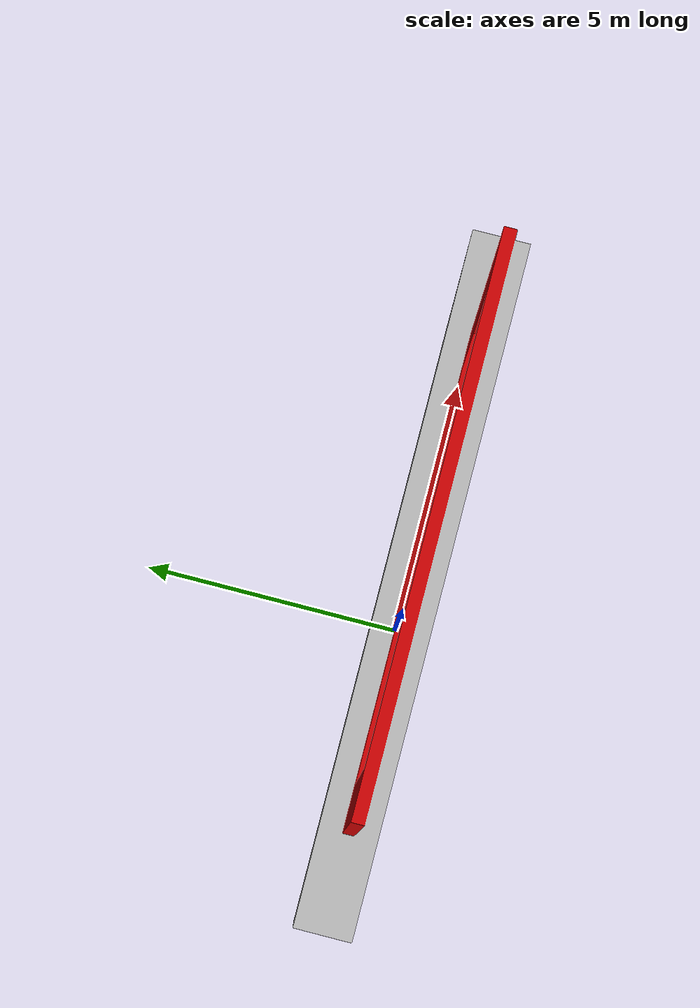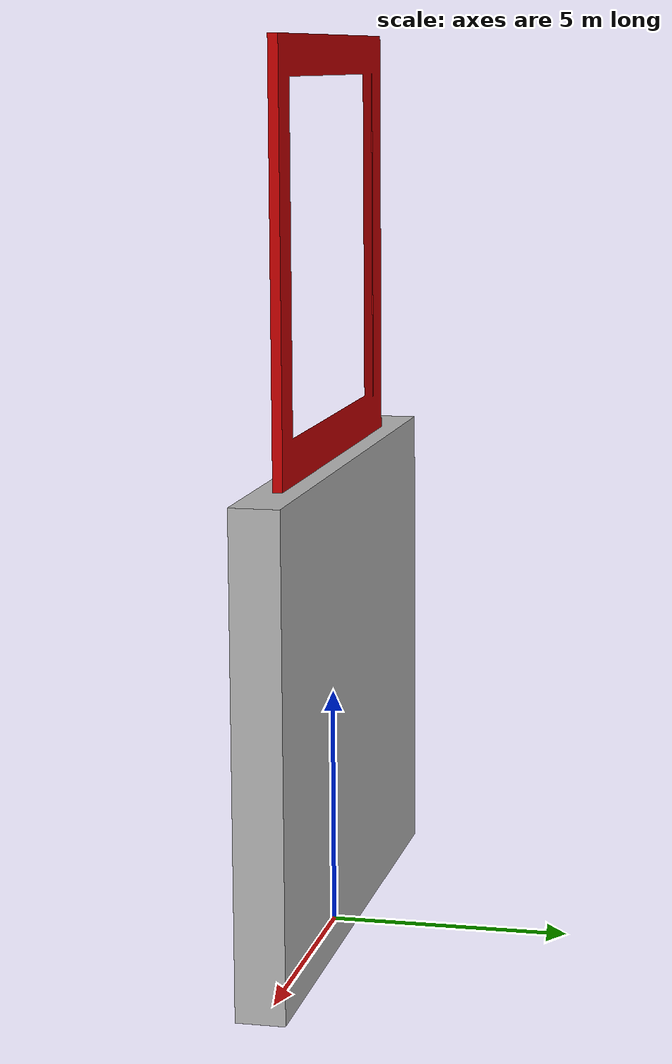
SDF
<?xml version="1.0" ?>
<sdf version="1.5">
  <model name="my_frame">
    <link name="link">
      <inertial>
        <pose>0 0 0 0 0 0</pose>
        <!-- volume about 0.0085 m^3, density 2000 kg/m^3 -->
        <mass>5</mass>
        <!-- approximate as uniform box 0.37 x 0.17 x 0.20 m -->
        <inertia>
          <ixx>0.06908</ixx>
          <ixy>0.0000</ixy>
          <iyy>0.028705</iyy>
          <ixz>0.0000</ixz>
          <iyz>0.0000</iyz>
          <izz>0.073708</izz>
        </inertia>
      </inertial>
      <visual name="visual">
        <geometry>
          <mesh>
            <uri>model://my_frame/meshes/my_frame1.dae</uri>
          </mesh>
        </geometry>
      </visual>
      <collision name="top">
        <pose>0 0 0.130175 0 0 0</pose>
        <geometry>
          <box>
            <size>0.19368008 0.396875 0.0254</size>
          </box>
        </geometry>
        <surface>
          <contact>
            <ode>
              <max_vel>0.1</max_vel>
              <min_depth>0.001</min_depth>
            </ode>
          </contact>
          <friction>
            <ode>
              <mu>1.0</mu>
              <mu2>1.0</mu2>
            </ode>
          </friction>
        </surface>
      </collision>
      <collision name="bottom">
        <pose>0 0 0.0127 0 0 0</pose>
        <geometry>
          <box>
            <size>0.19368008 0.396875 0.0254</size>
          </box>
        </geometry>
        <surface>
          <contact>
            <ode>
              <max_vel>0.1</max_vel>
              <min_depth>0.001</min_depth>
            </ode>
          </contact>
          <friction>
            <ode>
              <mu>1.0</mu>
              <mu2>1.0</mu2>
            </ode>
          </friction>
        </surface>
      </collision>
      <collision name="left">
        <pose>0 -0.1857375 0.0714375 0 0 0</pose>
        <geometry>
          <box>
            <size>0.19368008 0.0254 0.092075</size>
          </box>
        </geometry>
        <surface>
          <contact>
            <ode>
              <max_vel>0.1</max_vel>
              <min_depth>0.001</min_depth>
            </ode>
          </contact>
          <friction>
            <ode>
              <mu>1.0</mu>
              <mu2>1.0</mu2>
            </ode>
          </friction>
        </surface>
      </collision>
      <collision name="right">
        <pose>0 0.1857375 0.0714375 0 0 0</pose>
        <geometry>
          <box>
            <size>0.19368008 0.0254 0.092075</size>
          </box>
        </geometry>
        <surface>
          <contact>
            <ode>
              <max_vel>0.1</max_vel>
              <min_depth>0.001</min_depth>
            </ode>
          </contact>
          <friction>
            <ode>
              <mu>1.0</mu>
              <mu2>1.0</mu2>
            </ode>
          </friction>
        </surface>
      </collision>
      <collision name="middle">
        <pose>0 0 0.0714375 0 0 0</pose>
        <geometry>
          <box>
            <size>0.19368008 0.0254 0.092075</size>
          </box>
        </geometry>
        <surface>
          <contact>
            <ode>
              <max_vel>0.1</max_vel>
              <min_depth>0.001</min_depth>
            </ode>
          </contact>
          <friction>
            <ode>
              <mu>1.0</mu>
              <mu2>1.0</mu2>
            </ode>
          </friction>
        </surface>
      </collision>
    </link>
  </model>
</sdf>
